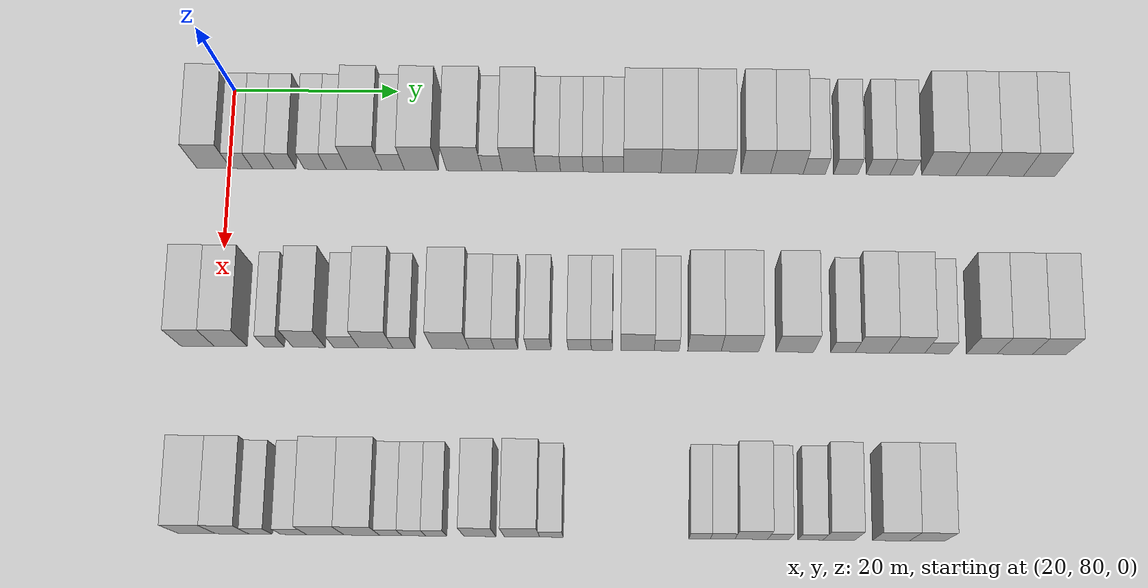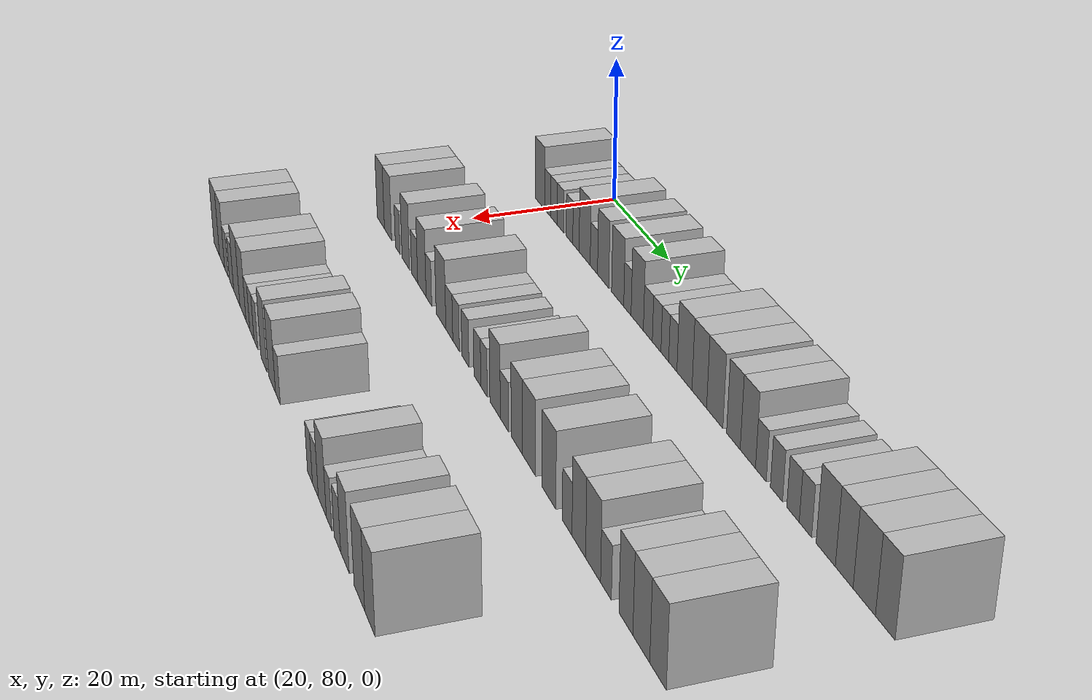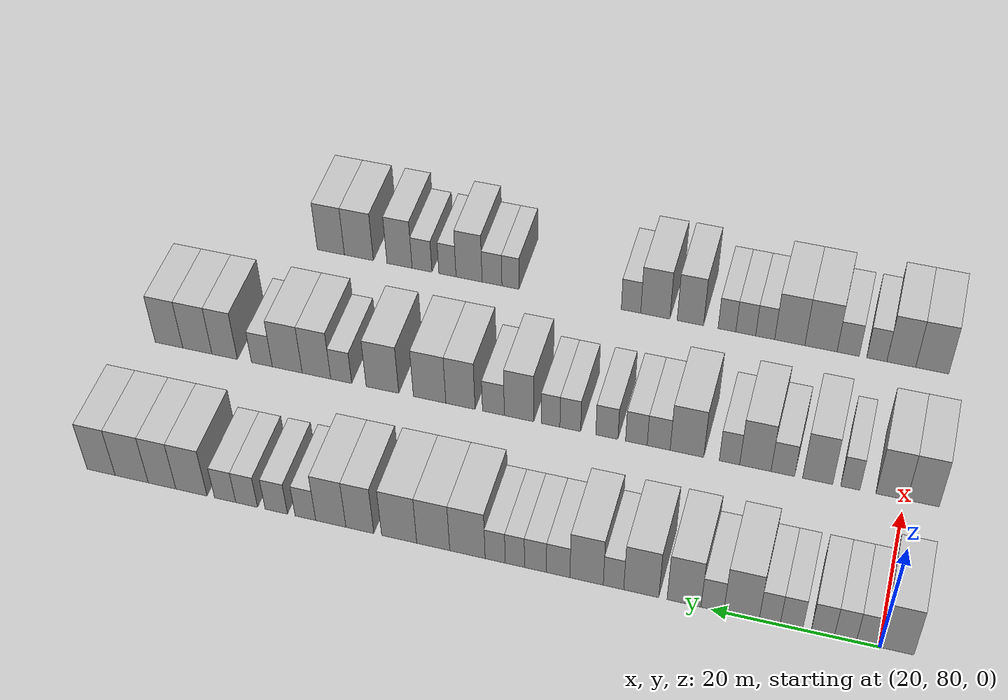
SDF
<sdf version="1.6">
 <world name="default">
  <model name="building_118">
   <static>1</static>
   <pose>25.0000 78.1026 0 0.000000 0.000000 0.000000</pose>
   <link name="link">
    <pose>0 0 4.50 0 0 0</pose>
    <collision name="collision"><geometry><box><size>10.0000 4.1083 9.0000</size></box></geometry></collision>
    <visual name="visual">
     <cast_shadows>0</cast_shadows>
     <geometry><box><size>10.0000 4.1083 9.0000</size></box></geometry>
     <material>
      <script>
       <uri>model://HANNAS_wall/materials/scripts</uri>
       <uri>model://HANNAS_wall/materials/textures</uri>
       <name>vrc/HANNAS_wall</name>
      </script>
     </material>
    </visual>
   </link>
  </model>
  <model name="building_119">
   <static>1</static>
   <pose>25.0000 81.4580 0 0.000000 0.000000 0.000000</pose>
   <link name="link">
    <pose>0 0 3.00 0 0 0</pose>
    <collision name="collision"><geometry><box><size>10.0000 2.6025 6.0000</size></box></geometry></collision>
    <visual name="visual">
     <cast_shadows>0</cast_shadows>
     <geometry><box><size>10.0000 2.6025 6.0000</size></box></geometry>
     <material>
      <script>
       <uri>model://HANNAS_wall/materials/scripts</uri>
       <uri>model://HANNAS_wall/materials/textures</uri>
       <name>vrc/HANNAS_wall</name>
      </script>
     </material>
    </visual>
   </link>
  </model>
  <model name="building_120">
   <static>1</static>
   <pose>25.0000 84.0516 0 0.000000 0.000000 0.000000</pose>
   <link name="link">
    <pose>0 0 3.00 0 0 0</pose>
    <collision name="collision"><geometry><box><size>10.0000 2.5847 6.0000</size></box></geometry></collision>
    <visual name="visual">
     <cast_shadows>0</cast_shadows>
     <geometry><box><size>10.0000 2.5847 6.0000</size></box></geometry>
     <material>
      <script>
       <uri>model://HANNAS_wall/materials/scripts</uri>
       <uri>model://HANNAS_wall/materials/textures</uri>
       <name>vrc/HANNAS_wall</name>
      </script>
     </material>
    </visual>
   </link>
  </model>
  <model name="building_121">
   <static>1</static>
   <pose>25.0000 86.7068 0 0.000000 0.000000 0.000000</pose>
   <link name="link">
    <pose>0 0 3.00 0 0 0</pose>
    <collision name="collision"><geometry><box><size>10.0000 2.7258 6.0000</size></box></geometry></collision>
    <visual name="visual">
     <cast_shadows>0</cast_shadows>
     <geometry><box><size>10.0000 2.7258 6.0000</size></box></geometry>
     <material>
      <script>
       <uri>model://HANNAS_wall/materials/scripts</uri>
       <uri>model://HANNAS_wall/materials/textures</uri>
       <name>vrc/HANNAS_wall</name>
      </script>
     </material>
    </visual>
   </link>
  </model>
  <model name="building_122">
   <static>1</static>
   <pose>25.0000 90.4013 0 0.000000 0.000000 0.000000</pose>
   <link name="link">
    <pose>0 0 3.00 0 0 0</pose>
    <collision name="collision"><geometry><box><size>10.0000 2.6631 6.0000</size></box></geometry></collision>
    <visual name="visual">
     <cast_shadows>0</cast_shadows>
     <geometry><box><size>10.0000 2.6631 6.0000</size></box></geometry>
     <material>
      <script>
       <uri>model://HANNAS_wall/materials/scripts</uri>
       <uri>model://HANNAS_wall/materials/textures</uri>
       <name>vrc/HANNAS_wall</name>
      </script>
     </material>
    </visual>
   </link>
  </model>
  <model name="building_123">
   <static>1</static>
   <pose>25.0000 92.9808 0 0.000000 0.000000 0.000000</pose>
   <link name="link">
    <pose>0 0 3.00 0 0 0</pose>
    <collision name="collision"><geometry><box><size>10.0000 2.4959 6.0000</size></box></geometry></collision>
    <visual name="visual">
     <cast_shadows>0</cast_shadows>
     <geometry><box><size>10.0000 2.4959 6.0000</size></box></geometry>
     <material>
      <script>
       <uri>model://HANNAS_wall/materials/scripts</uri>
       <uri>model://HANNAS_wall/materials/textures</uri>
       <name>vrc/HANNAS_wall</name>
      </script>
     </material>
    </visual>
   </link>
  </model>
  <model name="building_124">
   <static>1</static>
   <pose>25.0000 96.3482 0 0.000000 0.000000 0.000000</pose>
   <link name="link">
    <pose>0 0 4.50 0 0 0</pose>
    <collision name="collision"><geometry><box><size>10.0000 4.2388 9.0000</size></box></geometry></collision>
    <visual name="visual">
     <cast_shadows>0</cast_shadows>
     <geometry><box><size>10.0000 4.2388 9.0000</size></box></geometry>
     <material>
      <script>
       <uri>model://HANNAS_wall/materials/scripts</uri>
       <uri>model://HANNAS_wall/materials/textures</uri>
       <name>vrc/HANNAS_wall</name>
      </script>
     </material>
    </visual>
   </link>
  </model>
  <model name="building_125">
   <static>1</static>
   <pose>25.0000 99.8340 0 0.000000 0.000000 0.000000</pose>
   <link name="link">
    <pose>0 0 3.00 0 0 0</pose>
    <collision name="collision"><geometry><box><size>10.0000 2.7329 6.0000</size></box></geometry></collision>
    <visual name="visual">
     <cast_shadows>0</cast_shadows>
     <geometry><box><size>10.0000 2.7329 6.0000</size></box></geometry>
     <material>
      <script>
       <uri>model://HANNAS_wall/materials/scripts</uri>
       <uri>model://HANNAS_wall/materials/textures</uri>
       <name>vrc/HANNAS_wall</name>
      </script>
     </material>
    </visual>
   </link>
  </model>
  <model name="building_126">
   <static>1</static>
   <pose>25.0000 103.2493 0 0.000000 0.000000 0.000000</pose>
   <link name="link">
    <pose>0 0 4.50 0 0 0</pose>
    <collision name="collision"><geometry><box><size>10.0000 4.0977 9.0000</size></box></geometry></collision>
    <visual name="visual">
     <cast_shadows>0</cast_shadows>
     <geometry><box><size>10.0000 4.0977 9.0000</size></box></geometry>
     <material>
      <script>
       <uri>model://HANNAS_wall/materials/scripts</uri>
       <uri>model://HANNAS_wall/materials/textures</uri>
       <name>vrc/HANNAS_wall</name>
      </script>
     </material>
    </visual>
   </link>
  </model>
  <model name="building_127">
   <static>1</static>
   <pose>25.0000 108.4378 0 0.000000 0.000000 0.000000</pose>
   <link name="link">
    <pose>0 0 4.50 0 0 0</pose>
    <collision name="collision"><geometry><box><size>10.0000 4.2793 9.0000</size></box></geometry></collision>
    <visual name="visual">
     <cast_shadows>0</cast_shadows>
     <geometry><box><size>10.0000 4.2793 9.0000</size></box></geometry>
     <material>
      <script>
       <uri>model://HANNAS_wall/materials/scripts</uri>
       <uri>model://HANNAS_wall/materials/textures</uri>
       <name>vrc/HANNAS_wall</name>
      </script>
     </material>
    </visual>
   </link>
  </model>
  <model name="building_128">
   <static>1</static>
   <pose>25.0000 111.8316 0 0.000000 0.000000 0.000000</pose>
   <link name="link">
    <pose>0 0 3.00 0 0 0</pose>
    <collision name="collision"><geometry><box><size>10.0000 2.5083 6.0000</size></box></geometry></collision>
    <visual name="visual">
     <cast_shadows>0</cast_shadows>
     <geometry><box><size>10.0000 2.5083 6.0000</size></box></geometry>
     <material>
      <script>
       <uri>model://HANNAS_wall/materials/scripts</uri>
       <uri>model://HANNAS_wall/materials/textures</uri>
       <name>vrc/HANNAS_wall</name>
      </script>
     </material>
    </visual>
   </link>
  </model>
  <model name="building_129">
   <static>1</static>
   <pose>25.0000 115.1395 0 0.000000 0.000000 0.000000</pose>
   <link name="link">
    <pose>0 0 4.50 0 0 0</pose>
    <collision name="collision"><geometry><box><size>10.0000 4.1075 9.0000</size></box></geometry></collision>
    <visual name="visual">
     <cast_shadows>0</cast_shadows>
     <geometry><box><size>10.0000 4.1075 9.0000</size></box></geometry>
     <material>
      <script>
       <uri>model://HANNAS_wall/materials/scripts</uri>
       <uri>model://HANNAS_wall/materials/textures</uri>
       <name>vrc/HANNAS_wall</name>
      </script>
     </material>
    </visual>
   </link>
  </model>
  <model name="building_130">
   <static>1</static>
   <pose>25.0000 118.6441 0 0.000000 0.000000 0.000000</pose>
   <link name="link">
    <pose>0 0 3.00 0 0 0</pose>
    <collision name="collision"><geometry><box><size>10.0000 2.9015 6.0000</size></box></geometry></collision>
    <visual name="visual">
     <cast_shadows>0</cast_shadows>
     <geometry><box><size>10.0000 2.9015 6.0000</size></box></geometry>
     <material>
      <script>
       <uri>model://HANNAS_wall/materials/scripts</uri>
       <uri>model://HANNAS_wall/materials/textures</uri>
       <name>vrc/HANNAS_wall</name>
      </script>
     </material>
    </visual>
   </link>
  </model>
  <model name="building_131">
   <static>1</static>
   <pose>25.0000 121.4659 0 0.000000 0.000000 0.000000</pose>
   <link name="link">
    <pose>0 0 3.00 0 0 0</pose>
    <collision name="collision"><geometry><box><size>10.0000 2.7421 6.0000</size></box></geometry></collision>
    <visual name="visual">
     <cast_shadows>0</cast_shadows>
     <geometry><box><size>10.0000 2.7421 6.0000</size></box></geometry>
     <material>
      <script>
       <uri>model://HANNAS_wall/materials/scripts</uri>
       <uri>model://HANNAS_wall/materials/textures</uri>
       <name>vrc/HANNAS_wall</name>
      </script>
     </material>
    </visual>
   </link>
  </model>
  <model name="building_132">
   <static>1</static>
   <pose>25.0000 124.0411 0 0.000000 0.000000 0.000000</pose>
   <link name="link">
    <pose>0 0 3.00 0 0 0</pose>
    <collision name="collision"><geometry><box><size>10.0000 2.4083 6.0000</size></box></geometry></collision>
    <visual name="visual">
     <cast_shadows>0</cast_shadows>
     <geometry><box><size>10.0000 2.4083 6.0000</size></box></geometry>
     <material>
      <script>
       <uri>model://HANNAS_wall/materials/scripts</uri>
       <uri>model://HANNAS_wall/materials/textures</uri>
       <name>vrc/HANNAS_wall</name>
      </script>
     </material>
    </visual>
   </link>
  </model>
  <model name="building_133">
   <static>1</static>
   <pose>25.0000 126.5009 0 0.000000 0.000000 0.000000</pose>
   <link name="link">
    <pose>0 0 3.00 0 0 0</pose>
    <collision name="collision"><geometry><box><size>10.0000 2.5113 6.0000</size></box></geometry></collision>
    <visual name="visual">
     <cast_shadows>0</cast_shadows>
     <geometry><box><size>10.0000 2.5113 6.0000</size></box></geometry>
     <material>
      <script>
       <uri>model://HANNAS_wall/materials/scripts</uri>
       <uri>model://HANNAS_wall/materials/textures</uri>
       <name>vrc/HANNAS_wall</name>
      </script>
     </material>
    </visual>
   </link>
  </model>
  <model name="building_134">
   <static>1</static>
   <pose>25.0000 129.9955 0 0.000000 0.000000 0.000000</pose>
   <link name="link">
    <pose>0 0 4.50 0 0 0</pose>
    <collision name="collision"><geometry><box><size>10.0000 4.4778 9.0000</size></box></geometry></collision>
    <visual name="visual">
     <cast_shadows>0</cast_shadows>
     <geometry><box><size>10.0000 4.4778 9.0000</size></box></geometry>
     <material>
      <script>
       <uri>model://HANNAS_wall/materials/scripts</uri>
       <uri>model://HANNAS_wall/materials/textures</uri>
       <name>vrc/HANNAS_wall</name>
      </script>
     </material>
    </visual>
   </link>
  </model>
  <model name="building_135">
   <static>1</static>
   <pose>25.0000 134.3306 0 0.000000 0.000000 0.000000</pose>
   <link name="link">
    <pose>0 0 4.50 0 0 0</pose>
    <collision name="collision"><geometry><box><size>10.0000 4.1923 9.0000</size></box></geometry></collision>
    <visual name="visual">
     <cast_shadows>0</cast_shadows>
     <geometry><box><size>10.0000 4.1923 9.0000</size></box></geometry>
     <material>
      <script>
       <uri>model://HANNAS_wall/materials/scripts</uri>
       <uri>model://HANNAS_wall/materials/textures</uri>
       <name>vrc/HANNAS_wall</name>
      </script>
     </material>
    </visual>
   </link>
  </model>
  <model name="building_136">
   <static>1</static>
   <pose>25.0000 138.6757 0 0.000000 0.000000 0.000000</pose>
   <link name="link">
    <pose>0 0 4.50 0 0 0</pose>
    <collision name="collision"><geometry><box><size>10.0000 4.4979 9.0000</size></box></geometry></collision>
    <visual name="visual">
     <cast_shadows>0</cast_shadows>
     <geometry><box><size>10.0000 4.4979 9.0000</size></box></geometry>
     <material>
      <script>
       <uri>model://HANNAS_wall/materials/scripts</uri>
       <uri>model://HANNAS_wall/materials/textures</uri>
       <name>vrc/HANNAS_wall</name>
      </script>
     </material>
    </visual>
   </link>
  </model>
  <model name="building_137">
   <static>1</static>
   <pose>25.0000 143.7254 0 0.000000 0.000000 0.000000</pose>
   <link name="link">
    <pose>0 0 4.50 0 0 0</pose>
    <collision name="collision"><geometry><box><size>10.0000 3.6016 9.0000</size></box></geometry></collision>
    <visual name="visual">
     <cast_shadows>0</cast_shadows>
     <geometry><box><size>10.0000 3.6016 9.0000</size></box></geometry>
     <material>
      <script>
       <uri>model://HANNAS_wall/materials/scripts</uri>
       <uri>model://HANNAS_wall/materials/textures</uri>
       <name>vrc/HANNAS_wall</name>
      </script>
     </material>
    </visual>
   </link>
  </model>
  <model name="building_138">
   <static>1</static>
   <pose>25.0000 147.4875 0 0.000000 0.000000 0.000000</pose>
   <link name="link">
    <pose>0 0 4.50 0 0 0</pose>
    <collision name="collision"><geometry><box><size>10.0000 3.9226 9.0000</size></box></geometry></collision>
    <visual name="visual">
     <cast_shadows>0</cast_shadows>
     <geometry><box><size>10.0000 3.9226 9.0000</size></box></geometry>
     <material>
      <script>
       <uri>model://HANNAS_wall/materials/scripts</uri>
       <uri>model://HANNAS_wall/materials/textures</uri>
       <name>vrc/HANNAS_wall</name>
      </script>
     </material>
    </visual>
   </link>
  </model>
  <model name="building_139">
   <static>1</static>
   <pose>25.0000 150.7925 0 0.000000 0.000000 0.000000</pose>
   <link name="link">
    <pose>0 0 3.00 0 0 0</pose>
    <collision name="collision"><geometry><box><size>10.0000 2.6874 6.0000</size></box></geometry></collision>
    <visual name="visual">
     <cast_shadows>0</cast_shadows>
     <geometry><box><size>10.0000 2.6874 6.0000</size></box></geometry>
     <material>
      <script>
       <uri>model://HANNAS_wall/materials/scripts</uri>
       <uri>model://HANNAS_wall/materials/textures</uri>
       <name>vrc/HANNAS_wall</name>
      </script>
     </material>
    </visual>
   </link>
  </model>
  <model name="building_140">
   <static>1</static>
   <pose>25.0000 154.6018 0 0.000000 0.000000 0.000000</pose>
   <link name="link">
    <pose>0 0 3.00 0 0 0</pose>
    <collision name="collision"><geometry><box><size>10.0000 2.9312 6.0000</size></box></geometry></collision>
    <visual name="visual">
     <cast_shadows>0</cast_shadows>
     <geometry><box><size>10.0000 2.9312 6.0000</size></box></geometry>
     <material>
      <script>
       <uri>model://HANNAS_wall/materials/scripts</uri>
       <uri>model://HANNAS_wall/materials/textures</uri>
       <name>vrc/HANNAS_wall</name>
      </script>
     </material>
    </visual>
   </link>
  </model>
  <model name="building_141">
   <static>1</static>
   <pose>25.0000 158.5110 0 0.000000 0.000000 0.000000</pose>
   <link name="link">
    <pose>0 0 3.00 0 0 0</pose>
    <collision name="collision"><geometry><box><size>10.0000 2.8871 6.0000</size></box></geometry></collision>
    <visual name="visual">
     <cast_shadows>0</cast_shadows>
     <geometry><box><size>10.0000 2.8871 6.0000</size></box></geometry>
     <material>
      <script>
       <uri>model://HANNAS_wall/materials/scripts</uri>
       <uri>model://HANNAS_wall/materials/textures</uri>
       <name>vrc/HANNAS_wall</name>
      </script>
     </material>
    </visual>
   </link>
  </model>
  <model name="building_142">
   <static>1</static>
   <pose>25.0000 161.3601 0 0.000000 0.000000 0.000000</pose>
   <link name="link">
    <pose>0 0 3.00 0 0 0</pose>
    <collision name="collision"><geometry><box><size>10.0000 2.8111 6.0000</size></box></geometry></collision>
    <visual name="visual">
     <cast_shadows>0</cast_shadows>
     <geometry><box><size>10.0000 2.8111 6.0000</size></box></geometry>
     <material>
      <script>
       <uri>model://HANNAS_wall/materials/scripts</uri>
       <uri>model://HANNAS_wall/materials/textures</uri>
       <name>vrc/HANNAS_wall</name>
      </script>
     </material>
    </visual>
   </link>
  </model>
  <model name="building_143">
   <static>1</static>
   <pose>25.0000 165.8479 0 0.000000 0.000000 0.000000</pose>
   <link name="link">
    <pose>0 0 4.50 0 0 0</pose>
    <collision name="collision"><geometry><box><size>10.0000 4.1645 9.0000</size></box></geometry></collision>
    <visual name="visual">
     <cast_shadows>0</cast_shadows>
     <geometry><box><size>10.0000 4.1645 9.0000</size></box></geometry>
     <material>
      <script>
       <uri>model://HANNAS_wall/materials/scripts</uri>
       <uri>model://HANNAS_wall/materials/textures</uri>
       <name>vrc/HANNAS_wall</name>
      </script>
     </material>
    </visual>
   </link>
  </model>
  <model name="building_144">
   <static>1</static>
   <pose>25.0000 169.7862 0 0.000000 0.000000 0.000000</pose>
   <link name="link">
    <pose>0 0 4.50 0 0 0</pose>
    <collision name="collision"><geometry><box><size>10.0000 3.7120 9.0000</size></box></geometry></collision>
    <visual name="visual">
     <cast_shadows>0</cast_shadows>
     <geometry><box><size>10.0000 3.7120 9.0000</size></box></geometry>
     <material>
      <script>
       <uri>model://HANNAS_wall/materials/scripts</uri>
       <uri>model://HANNAS_wall/materials/textures</uri>
       <name>vrc/HANNAS_wall</name>
      </script>
     </material>
    </visual>
   </link>
  </model>
  <model name="building_145">
   <static>1</static>
   <pose>25.0000 173.8793 0 0.000000 0.000000 0.000000</pose>
   <link name="link">
    <pose>0 0 4.50 0 0 0</pose>
    <collision name="collision"><geometry><box><size>10.0000 4.4743 9.0000</size></box></geometry></collision>
    <visual name="visual">
     <cast_shadows>0</cast_shadows>
     <geometry><box><size>10.0000 4.4743 9.0000</size></box></geometry>
     <material>
      <script>
       <uri>model://HANNAS_wall/materials/scripts</uri>
       <uri>model://HANNAS_wall/materials/textures</uri>
       <name>vrc/HANNAS_wall</name>
      </script>
     </material>
    </visual>
   </link>
  </model>
  <model name="building_146">
   <static>1</static>
   <pose>25.0000 178.0195 0 0.000000 0.000000 0.000000</pose>
   <link name="link">
    <pose>0 0 4.50 0 0 0</pose>
    <collision name="collision"><geometry><box><size>10.0000 3.8060 9.0000</size></box></geometry></collision>
    <visual name="visual">
     <cast_shadows>0</cast_shadows>
     <geometry><box><size>10.0000 3.8060 9.0000</size></box></geometry>
     <material>
      <script>
       <uri>model://HANNAS_wall/materials/scripts</uri>
       <uri>model://HANNAS_wall/materials/textures</uri>
       <name>vrc/HANNAS_wall</name>
      </script>
     </material>
    </visual>
   </link>
  </model>
  <model name="building_317">
   <static>1</static>
   <pose>47.0000 77.6399 0 0.000000 0.000000 0.000000</pose>
   <link name="link">
    <pose>0 0 4.50 0 0 0</pose>
    <collision name="collision"><geometry><box><size>10.0000 3.9670 9.0000</size></box></geometry></collision>
    <visual name="visual">
     <cast_shadows>0</cast_shadows>
     <geometry><box><size>10.0000 3.9670 9.0000</size></box></geometry>
     <material>
      <script>
       <uri>model://HANNAS_wall/materials/scripts</uri>
       <uri>model://HANNAS_wall/materials/textures</uri>
       <name>vrc/HANNAS_wall</name>
      </script>
     </material>
    </visual>
   </link>
  </model>
  <model name="building_318">
   <static>1</static>
   <pose>47.0000 81.5639 0 0.000000 0.000000 0.000000</pose>
   <link name="link">
    <pose>0 0 4.50 0 0 0</pose>
    <collision name="collision"><geometry><box><size>10.0000 3.8811 9.0000</size></box></geometry></collision>
    <visual name="visual">
     <cast_shadows>0</cast_shadows>
     <geometry><box><size>10.0000 3.8811 9.0000</size></box></geometry>
     <material>
      <script>
       <uri>model://HANNAS_wall/materials/scripts</uri>
       <uri>model://HANNAS_wall/materials/textures</uri>
       <name>vrc/HANNAS_wall</name>
      </script>
     </material>
    </visual>
   </link>
  </model>
  <model name="building_319">
   <static>1</static>
   <pose>47.0000 86.7087 0 0.000000 0.000000 0.000000</pose>
   <link name="link">
    <pose>0 0 3.00 0 0 0</pose>
    <collision name="collision"><geometry><box><size>10.0000 2.4085 6.0000</size></box></geometry></collision>
    <visual name="visual">
     <cast_shadows>0</cast_shadows>
     <geometry><box><size>10.0000 2.4085 6.0000</size></box></geometry>
     <material>
      <script>
       <uri>model://HANNAS_wall/materials/scripts</uri>
       <uri>model://HANNAS_wall/materials/textures</uri>
       <name>vrc/HANNAS_wall</name>
      </script>
     </material>
    </visual>
   </link>
  </model>
  <model name="building_320">
   <static>1</static>
   <pose>47.0000 90.8177 0 0.000000 0.000000 0.000000</pose>
   <link name="link">
    <pose>0 0 4.50 0 0 0</pose>
    <collision name="collision"><geometry><box><size>10.0000 3.8093 9.0000</size></box></geometry></collision>
    <visual name="visual">
     <cast_shadows>0</cast_shadows>
     <geometry><box><size>10.0000 3.8093 9.0000</size></box></geometry>
     <material>
      <script>
       <uri>model://HANNAS_wall/materials/scripts</uri>
       <uri>model://HANNAS_wall/materials/textures</uri>
       <name>vrc/HANNAS_wall</name>
      </script>
     </material>
    </visual>
   </link>
  </model>
  <model name="building_321">
   <static>1</static>
   <pose>47.0000 95.2195 0 0.000000 0.000000 0.000000</pose>
   <link name="link">
    <pose>0 0 3.00 0 0 0</pose>
    <collision name="collision"><geometry><box><size>10.0000 2.9943 6.0000</size></box></geometry></collision>
    <visual name="visual">
     <cast_shadows>0</cast_shadows>
     <geometry><box><size>10.0000 2.9943 6.0000</size></box></geometry>
     <material>
      <script>
       <uri>model://HANNAS_wall/materials/scripts</uri>
       <uri>model://HANNAS_wall/materials/textures</uri>
       <name>vrc/HANNAS_wall</name>
      </script>
     </material>
    </visual>
   </link>
  </model>
  <model name="building_322">
   <static>1</static>
   <pose>47.0000 98.7204 0 0.000000 0.000000 0.000000</pose>
   <link name="link">
    <pose>0 0 4.50 0 0 0</pose>
    <collision name="collision"><geometry><box><size>10.0000 4.0074 9.0000</size></box></geometry></collision>
    <visual name="visual">
     <cast_shadows>0</cast_shadows>
     <geometry><box><size>10.0000 4.0074 9.0000</size></box></geometry>
     <material>
      <script>
       <uri>model://HANNAS_wall/materials/scripts</uri>
       <uri>model://HANNAS_wall/materials/textures</uri>
       <name>vrc/HANNAS_wall</name>
      </script>
     </material>
    </visual>
   </link>
  </model>
  <model name="building_323">
   <static>1</static>
   <pose>47.0000 102.0323 0 0.000000 0.000000 0.000000</pose>
   <link name="link">
    <pose>0 0 3.00 0 0 0</pose>
    <collision name="collision"><geometry><box><size>10.0000 2.6164 6.0000</size></box></geometry></collision>
    <visual name="visual">
     <cast_shadows>0</cast_shadows>
     <geometry><box><size>10.0000 2.6164 6.0000</size></box></geometry>
     <material>
      <script>
       <uri>model://HANNAS_wall/materials/scripts</uri>
       <uri>model://HANNAS_wall/materials/textures</uri>
       <name>vrc/HANNAS_wall</name>
      </script>
     </material>
    </visual>
   </link>
  </model>
  <model name="building_324">
   <static>1</static>
   <pose>47.0000 107.5163 0 0.000000 0.000000 0.000000</pose>
   <link name="link">
    <pose>0 0 4.50 0 0 0</pose>
    <collision name="collision"><geometry><box><size>10.0000 4.3517 9.0000</size></box></geometry></collision>
    <visual name="visual">
     <cast_shadows>0</cast_shadows>
     <geometry><box><size>10.0000 4.3517 9.0000</size></box></geometry>
     <material>
      <script>
       <uri>model://HANNAS_wall/materials/scripts</uri>
       <uri>model://HANNAS_wall/materials/textures</uri>
       <name>vrc/HANNAS_wall</name>
      </script>
     </material>
    </visual>
   </link>
  </model>
  <model name="building_325">
   <static>1</static>
   <pose>47.0000 111.1863 0 0.000000 0.000000 0.000000</pose>
   <link name="link">
    <pose>0 0 3.00 0 0 0</pose>
    <collision name="collision"><geometry><box><size>10.0000 2.9882 6.0000</size></box></geometry></collision>
    <visual name="visual">
     <cast_shadows>0</cast_shadows>
     <geometry><box><size>10.0000 2.9882 6.0000</size></box></geometry>
     <material>
      <script>
       <uri>model://HANNAS_wall/materials/scripts</uri>
       <uri>model://HANNAS_wall/materials/textures</uri>
       <name>vrc/HANNAS_wall</name>
      </script>
     </material>
    </visual>
   </link>
  </model>
  <model name="building_326">
   <static>1</static>
   <pose>47.0000 114.0915 0 0.000000 0.000000 0.000000</pose>
   <link name="link">
    <pose>0 0 3.00 0 0 0</pose>
    <collision name="collision"><geometry><box><size>10.0000 2.8222 6.0000</size></box></geometry></collision>
    <visual name="visual">
     <cast_shadows>0</cast_shadows>
     <geometry><box><size>10.0000 2.8222 6.0000</size></box></geometry>
     <material>
      <script>
       <uri>model://HANNAS_wall/materials/scripts</uri>
       <uri>model://HANNAS_wall/materials/textures</uri>
       <name>vrc/HANNAS_wall</name>
      </script>
     </material>
    </visual>
   </link>
  </model>
  <model name="building_327">
   <static>1</static>
   <pose>47.0000 117.9566 0 0.000000 0.000000 0.000000</pose>
   <link name="link">
    <pose>0 0 3.00 0 0 0</pose>
    <collision name="collision"><geometry><box><size>10.0000 2.9080 6.0000</size></box></geometry></collision>
    <visual name="visual">
     <cast_shadows>0</cast_shadows>
     <geometry><box><size>10.0000 2.9080 6.0000</size></box></geometry>
     <material>
      <script>
       <uri>model://HANNAS_wall/materials/scripts</uri>
       <uri>model://HANNAS_wall/materials/textures</uri>
       <name>vrc/HANNAS_wall</name>
      </script>
     </material>
    </visual>
   </link>
  </model>
  <model name="building_328">
   <static>1</static>
   <pose>47.0000 122.7841 0 0.000000 0.000000 0.000000</pose>
   <link name="link">
    <pose>0 0 3.00 0 0 0</pose>
    <collision name="collision"><geometry><box><size>10.0000 2.7471 6.0000</size></box></geometry></collision>
    <visual name="visual">
     <cast_shadows>0</cast_shadows>
     <geometry><box><size>10.0000 2.7471 6.0000</size></box></geometry>
     <material>
      <script>
       <uri>model://HANNAS_wall/materials/scripts</uri>
       <uri>model://HANNAS_wall/materials/textures</uri>
       <name>vrc/HANNAS_wall</name>
      </script>
     </material>
    </visual>
   </link>
  </model>
  <model name="building_329">
   <static>1</static>
   <pose>47.0000 125.3993 0 0.000000 0.000000 0.000000</pose>
   <link name="link">
    <pose>0 0 3.00 0 0 0</pose>
    <collision name="collision"><geometry><box><size>10.0000 2.4831 6.0000</size></box></geometry></collision>
    <visual name="visual">
     <cast_shadows>0</cast_shadows>
     <geometry><box><size>10.0000 2.4831 6.0000</size></box></geometry>
     <material>
      <script>
       <uri>model://HANNAS_wall/materials/scripts</uri>
       <uri>model://HANNAS_wall/materials/textures</uri>
       <name>vrc/HANNAS_wall</name>
      </script>
     </material>
    </visual>
   </link>
  </model>
  <model name="building_330">
   <static>1</static>
   <pose>47.0000 129.6037 0 0.000000 0.000000 0.000000</pose>
   <link name="link">
    <pose>0 0 4.50 0 0 0</pose>
    <collision name="collision"><geometry><box><size>10.0000 3.9258 9.0000</size></box></geometry></collision>
    <visual name="visual">
     <cast_shadows>0</cast_shadows>
     <geometry><box><size>10.0000 3.9258 9.0000</size></box></geometry>
     <material>
      <script>
       <uri>model://HANNAS_wall/materials/scripts</uri>
       <uri>model://HANNAS_wall/materials/textures</uri>
       <name>vrc/HANNAS_wall</name>
      </script>
     </material>
    </visual>
   </link>
  </model>
  <model name="building_331">
   <static>1</static>
   <pose>47.0000 133.0381 0 0.000000 0.000000 0.000000</pose>
   <link name="link">
    <pose>0 0 3.00 0 0 0</pose>
    <collision name="collision"><geometry><box><size>10.0000 2.9429 6.0000</size></box></geometry></collision>
    <visual name="visual">
     <cast_shadows>0</cast_shadows>
     <geometry><box><size>10.0000 2.9429 6.0000</size></box></geometry>
     <material>
      <script>
       <uri>model://HANNAS_wall/materials/scripts</uri>
       <uri>model://HANNAS_wall/materials/textures</uri>
       <name>vrc/HANNAS_wall</name>
      </script>
     </material>
    </visual>
   </link>
  </model>
  <model name="building_332">
   <static>1</static>
   <pose>47.0000 137.4863 0 0.000000 0.000000 0.000000</pose>
   <link name="link">
    <pose>0 0 4.50 0 0 0</pose>
    <collision name="collision"><geometry><box><size>10.0000 3.9534 9.0000</size></box></geometry></collision>
    <visual name="visual">
     <cast_shadows>0</cast_shadows>
     <geometry><box><size>10.0000 3.9534 9.0000</size></box></geometry>
     <material>
      <script>
       <uri>model://HANNAS_wall/materials/scripts</uri>
       <uri>model://HANNAS_wall/materials/textures</uri>
       <name>vrc/HANNAS_wall</name>
      </script>
     </material>
    </visual>
   </link>
  </model>
  <model name="building_333">
   <static>1</static>
   <pose>47.0000 141.6769 0 0.000000 0.000000 0.000000</pose>
   <link name="link">
    <pose>0 0 4.50 0 0 0</pose>
    <collision name="collision"><geometry><box><size>10.0000 4.4278 9.0000</size></box></geometry></collision>
    <visual name="visual">
     <cast_shadows>0</cast_shadows>
     <geometry><box><size>10.0000 4.4278 9.0000</size></box></geometry>
     <material>
      <script>
       <uri>model://HANNAS_wall/materials/scripts</uri>
       <uri>model://HANNAS_wall/materials/textures</uri>
       <name>vrc/HANNAS_wall</name>
      </script>
     </material>
    </visual>
   </link>
  </model>
  <model name="building_334">
   <static>1</static>
   <pose>47.0000 148.1304 0 0.000000 0.000000 0.000000</pose>
   <link name="link">
    <pose>0 0 4.50 0 0 0</pose>
    <collision name="collision"><geometry><box><size>10.0000 4.4793 9.0000</size></box></geometry></collision>
    <visual name="visual">
     <cast_shadows>0</cast_shadows>
     <geometry><box><size>10.0000 4.4793 9.0000</size></box></geometry>
     <material>
      <script>
       <uri>model://HANNAS_wall/materials/scripts</uri>
       <uri>model://HANNAS_wall/materials/textures</uri>
       <name>vrc/HANNAS_wall</name>
      </script>
     </material>
    </visual>
   </link>
  </model>
  <model name="building_335">
   <static>1</static>
   <pose>47.0000 153.8209 0 0.000000 0.000000 0.000000</pose>
   <link name="link">
    <pose>0 0 3.00 0 0 0</pose>
    <collision name="collision"><geometry><box><size>10.0000 2.9016 6.0000</size></box></geometry></collision>
    <visual name="visual">
     <cast_shadows>0</cast_shadows>
     <geometry><box><size>10.0000 2.9016 6.0000</size></box></geometry>
     <material>
      <script>
       <uri>model://HANNAS_wall/materials/scripts</uri>
       <uri>model://HANNAS_wall/materials/textures</uri>
       <name>vrc/HANNAS_wall</name>
      </script>
     </material>
    </visual>
   </link>
  </model>
  <model name="building_336">
   <static>1</static>
   <pose>47.0000 157.2672 0 0.000000 0.000000 0.000000</pose>
   <link name="link">
    <pose>0 0 4.50 0 0 0</pose>
    <collision name="collision"><geometry><box><size>10.0000 3.9909 9.0000</size></box></geometry></collision>
    <visual name="visual">
     <cast_shadows>0</cast_shadows>
     <geometry><box><size>10.0000 3.9909 9.0000</size></box></geometry>
     <material>
      <script>
       <uri>model://HANNAS_wall/materials/scripts</uri>
       <uri>model://HANNAS_wall/materials/textures</uri>
       <name>vrc/HANNAS_wall</name>
      </script>
     </material>
    </visual>
   </link>
  </model>
  <model name="building_337">
   <static>1</static>
   <pose>47.0000 161.3640 0 0.000000 0.000000 0.000000</pose>
   <link name="link">
    <pose>0 0 4.50 0 0 0</pose>
    <collision name="collision"><geometry><box><size>10.0000 4.2027 9.0000</size></box></geometry></collision>
    <visual name="visual">
     <cast_shadows>0</cast_shadows>
     <geometry><box><size>10.0000 4.2027 9.0000</size></box></geometry>
     <material>
      <script>
       <uri>model://HANNAS_wall/materials/scripts</uri>
       <uri>model://HANNAS_wall/materials/textures</uri>
       <name>vrc/HANNAS_wall</name>
      </script>
     </material>
    </visual>
   </link>
  </model>
  <model name="building_338">
   <static>1</static>
   <pose>47.0000 164.9334 0 0.000000 0.000000 0.000000</pose>
   <link name="link">
    <pose>0 0 3.00 0 0 0</pose>
    <collision name="collision"><geometry><box><size>10.0000 2.9360 6.0000</size></box></geometry></collision>
    <visual name="visual">
     <cast_shadows>0</cast_shadows>
     <geometry><box><size>10.0000 2.9360 6.0000</size></box></geometry>
     <material>
      <script>
       <uri>model://HANNAS_wall/materials/scripts</uri>
       <uri>model://HANNAS_wall/materials/textures</uri>
       <name>vrc/HANNAS_wall</name>
      </script>
     </material>
    </visual>
   </link>
  </model>
  <model name="building_339">
   <static>1</static>
   <pose>47.0000 170.2018 0 0.000000 0.000000 0.000000</pose>
   <link name="link">
    <pose>0 0 4.50 0 0 0</pose>
    <collision name="collision"><geometry><box><size>10.0000 3.6008 9.0000</size></box></geometry></collision>
    <visual name="visual">
     <cast_shadows>0</cast_shadows>
     <geometry><box><size>10.0000 3.6008 9.0000</size></box></geometry>
     <material>
      <script>
       <uri>model://HANNAS_wall/materials/scripts</uri>
       <uri>model://HANNAS_wall/materials/textures</uri>
       <name>vrc/HANNAS_wall</name>
      </script>
     </material>
    </visual>
   </link>
  </model>
  <model name="building_340">
   <static>1</static>
   <pose>47.0000 174.0911 0 0.000000 0.000000 0.000000</pose>
   <link name="link">
    <pose>0 0 4.50 0 0 0</pose>
    <collision name="collision"><geometry><box><size>10.0000 4.1779 9.0000</size></box></geometry></collision>
    <visual name="visual">
     <cast_shadows>0</cast_shadows>
     <geometry><box><size>10.0000 4.1779 9.0000</size></box></geometry>
     <material>
      <script>
       <uri>model://HANNAS_wall/materials/scripts</uri>
       <uri>model://HANNAS_wall/materials/textures</uri>
       <name>vrc/HANNAS_wall</name>
      </script>
     </material>
    </visual>
   </link>
  </model>
  <model name="building_341">
   <static>1</static>
   <pose>47.0000 178.1541 0 0.000000 0.000000 0.000000</pose>
   <link name="link">
    <pose>0 0 4.50 0 0 0</pose>
    <collision name="collision"><geometry><box><size>10.0000 3.9481 9.0000</size></box></geometry></collision>
    <visual name="visual">
     <cast_shadows>0</cast_shadows>
     <geometry><box><size>10.0000 3.9481 9.0000</size></box></geometry>
     <material>
      <script>
       <uri>model://HANNAS_wall/materials/scripts</uri>
       <uri>model://HANNAS_wall/materials/textures</uri>
       <name>vrc/HANNAS_wall</name>
      </script>
     </material>
    </visual>
   </link>
  </model>
  <model name="building_507">
   <static>1</static>
   <pose>69.0000 79.0976 0 0.000000 0.000000 0.000000</pose>
   <link name="link">
    <pose>0 0 4.50 0 0 0</pose>
    <collision name="collision"><geometry><box><size>10.0000 4.3519 9.0000</size></box></geometry></collision>
    <visual name="visual">
     <cast_shadows>0</cast_shadows>
     <geometry><box><size>10.0000 4.3519 9.0000</size></box></geometry>
     <material>
      <script>
       <uri>model://HANNAS_wall/materials/scripts</uri>
       <uri>model://HANNAS_wall/materials/textures</uri>
       <name>vrc/HANNAS_wall</name>
      </script>
     </material>
    </visual>
   </link>
  </model>
  <model name="building_508">
   <static>1</static>
   <pose>69.0000 83.1852 0 0.000000 0.000000 0.000000</pose>
   <link name="link">
    <pose>0 0 4.50 0 0 0</pose>
    <collision name="collision"><geometry><box><size>10.0000 3.8233 9.0000</size></box></geometry></collision>
    <visual name="visual">
     <cast_shadows>0</cast_shadows>
     <geometry><box><size>10.0000 3.8233 9.0000</size></box></geometry>
     <material>
      <script>
       <uri>model://HANNAS_wall/materials/scripts</uri>
       <uri>model://HANNAS_wall/materials/textures</uri>
       <name>vrc/HANNAS_wall</name>
      </script>
     </material>
    </visual>
   </link>
  </model>
  <model name="building_509">
   <static>1</static>
   <pose>69.0000 86.4330 0 0.000000 0.000000 0.000000</pose>
   <link name="link">
    <pose>0 0 3.00 0 0 0</pose>
    <collision name="collision"><geometry><box><size>10.0000 2.6722 6.0000</size></box></geometry></collision>
    <visual name="visual">
     <cast_shadows>0</cast_shadows>
     <geometry><box><size>10.0000 2.6722 6.0000</size></box></geometry>
     <material>
      <script>
       <uri>model://HANNAS_wall/materials/scripts</uri>
       <uri>model://HANNAS_wall/materials/textures</uri>
       <name>vrc/HANNAS_wall</name>
      </script>
     </material>
    </visual>
   </link>
  </model>
  <model name="building_510">
   <static>1</static>
   <pose>69.0000 90.2490 0 0.000000 0.000000 0.000000</pose>
   <link name="link">
    <pose>0 0 3.00 0 0 0</pose>
    <collision name="collision"><geometry><box><size>10.0000 2.9597 6.0000</size></box></geometry></collision>
    <visual name="visual">
     <cast_shadows>0</cast_shadows>
     <geometry><box><size>10.0000 2.9597 6.0000</size></box></geometry>
     <material>
      <script>
       <uri>model://HANNAS_wall/materials/scripts</uri>
       <uri>model://HANNAS_wall/materials/textures</uri>
       <name>vrc/HANNAS_wall</name>
      </script>
     </material>
    </visual>
   </link>
  </model>
  <model name="building_511">
   <static>1</static>
   <pose>69.0000 93.8939 0 0.000000 0.000000 0.000000</pose>
   <link name="link">
    <pose>0 0 4.50 0 0 0</pose>
    <collision name="collision"><geometry><box><size>10.0000 4.3303 9.0000</size></box></geometry></collision>
    <visual name="visual">
     <cast_shadows>0</cast_shadows>
     <geometry><box><size>10.0000 4.3303 9.0000</size></box></geometry>
     <material>
      <script>
       <uri>model://HANNAS_wall/materials/scripts</uri>
       <uri>model://HANNAS_wall/materials/textures</uri>
       <name>vrc/HANNAS_wall</name>
      </script>
     </material>
    </visual>
   </link>
  </model>
  <model name="building_512">
   <static>1</static>
   <pose>69.0000 98.0971 0 0.000000 0.000000 0.000000</pose>
   <link name="link">
    <pose>0 0 4.50 0 0 0</pose>
    <collision name="collision"><geometry><box><size>10.0000 4.0761 9.0000</size></box></geometry></collision>
    <visual name="visual">
     <cast_shadows>0</cast_shadows>
     <geometry><box><size>10.0000 4.0761 9.0000</size></box></geometry>
     <material>
      <script>
       <uri>model://HANNAS_wall/materials/scripts</uri>
       <uri>model://HANNAS_wall/materials/textures</uri>
       <name>vrc/HANNAS_wall</name>
      </script>
     </material>
    </visual>
   </link>
  </model>
  <model name="building_513">
   <static>1</static>
   <pose>69.0000 101.4290 0 0.000000 0.000000 0.000000</pose>
   <link name="link">
    <pose>0 0 3.00 0 0 0</pose>
    <collision name="collision"><geometry><box><size>10.0000 2.5878 6.0000</size></box></geometry></collision>
    <visual name="visual">
     <cast_shadows>0</cast_shadows>
     <geometry><box><size>10.0000 2.5878 6.0000</size></box></geometry>
     <material>
      <script>
       <uri>model://HANNAS_wall/materials/scripts</uri>
       <uri>model://HANNAS_wall/materials/textures</uri>
       <name>vrc/HANNAS_wall</name>
      </script>
     </material>
    </visual>
   </link>
  </model>
  <model name="building_514">
   <static>1</static>
   <pose>69.0000 104.0740 0 0.000000 0.000000 0.000000</pose>
   <link name="link">
    <pose>0 0 3.00 0 0 0</pose>
    <collision name="collision"><geometry><box><size>10.0000 2.7022 6.0000</size></box></geometry></collision>
    <visual name="visual">
     <cast_shadows>0</cast_shadows>
     <geometry><box><size>10.0000 2.7022 6.0000</size></box></geometry>
     <material>
      <script>
       <uri>model://HANNAS_wall/materials/scripts</uri>
       <uri>model://HANNAS_wall/materials/textures</uri>
       <name>vrc/HANNAS_wall</name>
      </script>
     </material>
    </visual>
   </link>
  </model>
  <model name="building_515">
   <static>1</static>
   <pose>69.0000 106.6387 0 0.000000 0.000000 0.000000</pose>
   <link name="link">
    <pose>0 0 3.00 0 0 0</pose>
    <collision name="collision"><geometry><box><size>10.0000 2.4271 6.0000</size></box></geometry></collision>
    <visual name="visual">
     <cast_shadows>0</cast_shadows>
     <geometry><box><size>10.0000 2.4271 6.0000</size></box></geometry>
     <material>
      <script>
       <uri>model://HANNAS_wall/materials/scripts</uri>
       <uri>model://HANNAS_wall/materials/textures</uri>
       <name>vrc/HANNAS_wall</name>
      </script>
     </material>
    </visual>
   </link>
  </model>
  <model name="building_516">
   <static>1</static>
   <pose>69.0000 111.6702 0 0.000000 0.000000 0.000000</pose>
   <link name="link">
    <pose>0 0 4.50 0 0 0</pose>
    <collision name="collision"><geometry><box><size>10.0000 3.6359 9.0000</size></box></geometry></collision>
    <visual name="visual">
     <cast_shadows>0</cast_shadows>
     <geometry><box><size>10.0000 3.6359 9.0000</size></box></geometry>
     <material>
      <script>
       <uri>model://HANNAS_wall/materials/scripts</uri>
       <uri>model://HANNAS_wall/materials/textures</uri>
       <name>vrc/HANNAS_wall</name>
      </script>
     </material>
    </visual>
   </link>
  </model>
  <model name="building_517">
   <static>1</static>
   <pose>69.0000 116.5154 0 0.000000 0.000000 0.000000</pose>
   <link name="link">
    <pose>0 0 4.50 0 0 0</pose>
    <collision name="collision"><geometry><box><size>10.0000 4.0545 9.0000</size></box></geometry></collision>
    <visual name="visual">
     <cast_shadows>0</cast_shadows>
     <geometry><box><size>10.0000 4.0545 9.0000</size></box></geometry>
     <material>
      <script>
       <uri>model://HANNAS_wall/materials/scripts</uri>
       <uri>model://HANNAS_wall/materials/textures</uri>
       <name>vrc/HANNAS_wall</name>
      </script>
     </material>
    </visual>
   </link>
  </model>
  <model name="building_518">
   <static>1</static>
   <pose>69.0000 119.8960 0 0.000000 0.000000 0.000000</pose>
   <link name="link">
    <pose>0 0 3.00 0 0 0</pose>
    <collision name="collision"><geometry><box><size>10.0000 2.7067 6.0000</size></box></geometry></collision>
    <visual name="visual">
     <cast_shadows>0</cast_shadows>
     <geometry><box><size>10.0000 2.7067 6.0000</size></box></geometry>
     <material>
      <script>
       <uri>model://HANNAS_wall/materials/scripts</uri>
       <uri>model://HANNAS_wall/materials/textures</uri>
       <name>vrc/HANNAS_wall</name>
      </script>
     </material>
    </visual>
   </link>
  </model>
  <model name="building_519">
   <static>1</static>
   <pose>69.0000 136.9149 0 0.000000 0.000000 0.000000</pose>
   <link name="link">
    <pose>0 0 3.00 0 0 0</pose>
    <collision name="collision"><geometry><box><size>10.0000 2.4438 6.0000</size></box></geometry></collision>
    <visual name="visual">
     <cast_shadows>0</cast_shadows>
     <geometry><box><size>10.0000 2.4438 6.0000</size></box></geometry>
     <material>
      <script>
       <uri>model://HANNAS_wall/materials/scripts</uri>
       <uri>model://HANNAS_wall/materials/textures</uri>
       <name>vrc/HANNAS_wall</name>
      </script>
     </material>
    </visual>
   </link>
  </model>
  <model name="building_520">
   <static>1</static>
   <pose>69.0000 139.5557 0 0.000000 0.000000 0.000000</pose>
   <link name="link">
    <pose>0 0 3.00 0 0 0</pose>
    <collision name="collision"><geometry><box><size>10.0000 2.8378 6.0000</size></box></geometry></collision>
    <visual name="visual">
     <cast_shadows>0</cast_shadows>
     <geometry><box><size>10.0000 2.8378 6.0000</size></box></geometry>
     <material>
      <script>
       <uri>model://HANNAS_wall/materials/scripts</uri>
       <uri>model://HANNAS_wall/materials/textures</uri>
       <name>vrc/HANNAS_wall</name>
      </script>
     </material>
    </visual>
   </link>
  </model>
  <model name="building_521">
   <static>1</static>
   <pose>69.0000 142.8570 0 0.000000 0.000000 0.000000</pose>
   <link name="link">
    <pose>0 0 4.50 0 0 0</pose>
    <collision name="collision"><geometry><box><size>10.0000 3.7647 9.0000</size></box></geometry></collision>
    <visual name="visual">
     <cast_shadows>0</cast_shadows>
     <geometry><box><size>10.0000 3.7647 9.0000</size></box></geometry>
     <material>
      <script>
       <uri>model://HANNAS_wall/materials/scripts</uri>
       <uri>model://HANNAS_wall/materials/textures</uri>
       <name>vrc/HANNAS_wall</name>
      </script>
     </material>
    </visual>
   </link>
  </model>
  <model name="building_522">
   <static>1</static>
   <pose>69.0000 145.9808 0 0.000000 0.000000 0.000000</pose>
   <link name="link">
    <pose>0 0 3.00 0 0 0</pose>
    <collision name="collision"><geometry><box><size>10.0000 2.4828 6.0000</size></box></geometry></collision>
    <visual name="visual">
     <cast_shadows>0</cast_shadows>
     <geometry><box><size>10.0000 2.4828 6.0000</size></box></geometry>
     <material>
      <script>
       <uri>model://HANNAS_wall/materials/scripts</uri>
       <uri>model://HANNAS_wall/materials/textures</uri>
       <name>vrc/HANNAS_wall</name>
      </script>
     </material>
    </visual>
   </link>
  </model>
  <model name="building_523">
   <static>1</static>
   <pose>69.0000 149.6690 0 0.000000 0.000000 0.000000</pose>
   <link name="link">
    <pose>0 0 3.00 0 0 0</pose>
    <collision name="collision"><geometry><box><size>10.0000 2.8935 6.0000</size></box></geometry></collision>
    <visual name="visual">
     <cast_shadows>0</cast_shadows>
     <geometry><box><size>10.0000 2.8935 6.0000</size></box></geometry>
     <material>
      <script>
       <uri>model://HANNAS_wall/materials/scripts</uri>
       <uri>model://HANNAS_wall/materials/textures</uri>
       <name>vrc/HANNAS_wall</name>
      </script>
     </material>
    </visual>
   </link>
  </model>
  <model name="building_524">
   <static>1</static>
   <pose>69.0000 152.9474 0 0.000000 0.000000 0.000000</pose>
   <link name="link">
    <pose>0 0 4.50 0 0 0</pose>
    <collision name="collision"><geometry><box><size>10.0000 3.6634 9.0000</size></box></geometry></collision>
    <visual name="visual">
     <cast_shadows>0</cast_shadows>
     <geometry><box><size>10.0000 3.6634 9.0000</size></box></geometry>
     <material>
      <script>
       <uri>model://HANNAS_wall/materials/scripts</uri>
       <uri>model://HANNAS_wall/materials/textures</uri>
       <name>vrc/HANNAS_wall</name>
      </script>
     </material>
    </visual>
   </link>
  </model>
  <model name="building_525">
   <static>1</static>
   <pose>69.0000 158.9117 0 0.000000 0.000000 0.000000</pose>
   <link name="link">
    <pose>0 0 4.50 0 0 0</pose>
    <collision name="collision"><geometry><box><size>10.0000 4.2652 9.0000</size></box></geometry></collision>
    <visual name="visual">
     <cast_shadows>0</cast_shadows>
     <geometry><box><size>10.0000 4.2652 9.0000</size></box></geometry>
     <material>
      <script>
       <uri>model://HANNAS_wall/materials/scripts</uri>
       <uri>model://HANNAS_wall/materials/textures</uri>
       <name>vrc/HANNAS_wall</name>
      </script>
     </material>
    </visual>
   </link>
  </model>
  <model name="building_526">
   <static>1</static>
   <pose>69.0000 163.0533 0 0.000000 0.000000 0.000000</pose>
   <link name="link">
    <pose>0 0 4.50 0 0 0</pose>
    <collision name="collision"><geometry><box><size>10.0000 4.0179 9.0000</size></box></geometry></collision>
    <visual name="visual">
     <cast_shadows>0</cast_shadows>
     <geometry><box><size>10.0000 4.0179 9.0000</size></box></geometry>
     <material>
      <script>
       <uri>model://HANNAS_wall/materials/scripts</uri>
       <uri>model://HANNAS_wall/materials/textures</uri>
       <name>vrc/HANNAS_wall</name>
      </script>
     </material>
    </visual>
   </link>
  </model>
 </world>
</sdf>
